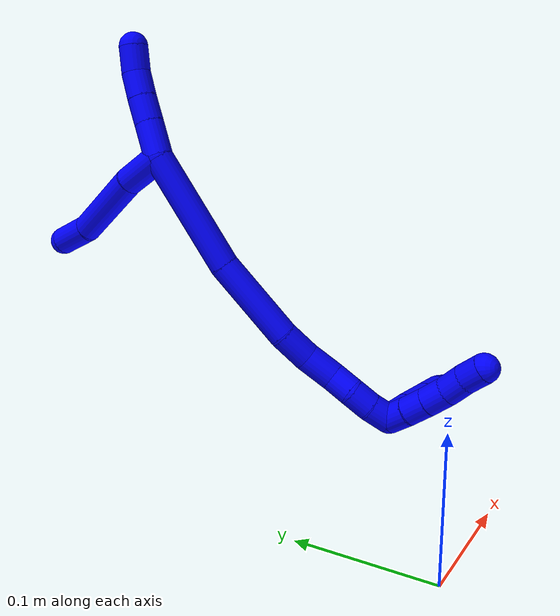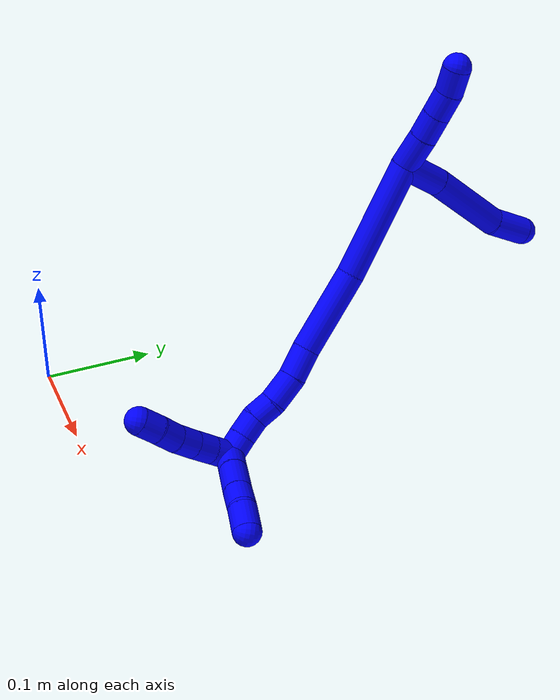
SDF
<sdf version="1.7">
 <world name="default">
  <model name="1">
   <static>0</static>
   <link name="1">
    <collision name="collision-cylinder-e_1_2_8">
     <pose>-0.007686 -0.001689 0.018577 0.090664 -0.390823 -0.017958</pose>
     <geometry><cylinder><radius>0.0125</radius><length>0.040349</length></cylinder></geometry>
     <surface>
      <friction><ode><mu>1.16</mu><mu2>1.16</mu2><slip1>0</slip1><slip2>0</slip2></ode></friction>
      <contact><ode><kp>1e+06</kp><kd>1</kd><max_vel>0</max_vel><min_depth>0.001</min_depth></ode></contact>
     </surface>
    </collision>
    <visual name="visual-cylinder-e_1_2_8">
     <pose>-0.007686 -0.001689 0.018577 0.090664 -0.390823 -0.017958</pose>
     <geometry><cylinder><radius>0.0125</radius><length>0.040349</length></cylinder></geometry>
     <material><ambient>0 0 1 1</ambient></material>
    </visual>
    <collision name="collision-cylinder-e_2_8_9">
     <pose>-0.031638 -0.002011 0.070503 -0.040973 -0.453503 0.009455</pose>
     <geometry><cylinder><radius>0.0125</radius><length>0.07426</length></cylinder></geometry>
     <surface>
      <friction><ode><mu>1.16</mu><mu2>1.16</mu2><slip1>0</slip1><slip2>0</slip2></ode></friction>
      <contact><ode><kp>1e+06</kp><kd>1</kd><max_vel>0</max_vel><min_depth>0.001</min_depth></ode></contact>
     </surface>
    </collision>
    <visual name="visual-cylinder-e_2_8_9">
     <pose>-0.031638 -0.002011 0.070503 -0.040973 -0.453503 0.009455</pose>
     <geometry><cylinder><radius>0.0125</radius><length>0.07426</length></cylinder></geometry>
     <material><ambient>0 0 1 1</ambient></material>
    </visual>
    <collision name="collision-cylinder-e_3_9_6">
     <pose>-0.052332 -0.002877 0.120838 0.130732 -0.2528 -0.016636</pose>
     <geometry><cylinder><radius>0.0125</radius><length>0.03539</length></cylinder></geometry>
     <surface>
      <friction><ode><mu>1.16</mu><mu2>1.16</mu2><slip1>0</slip1><slip2>0</slip2></ode></friction>
      <contact><ode><kp>1e+06</kp><kd>1</kd><max_vel>0</max_vel><min_depth>0.001</min_depth></ode></contact>
     </surface>
    </collision>
    <visual name="visual-cylinder-e_3_9_6">
     <pose>-0.052332 -0.002877 0.120838 0.130732 -0.2528 -0.016636</pose>
     <geometry><cylinder><radius>0.0125</radius><length>0.03539</length></cylinder></geometry>
     <material><ambient>0 0 1 1</ambient></material>
    </visual>
    <collision name="collision-cylinder-e_1_2_10">
     <pose>0.014425 -0.004926 0.003274 0.984275 1.18169 0.690453</pose>
     <geometry><cylinder><radius>0.0125</radius><length>0.031181</length></cylinder></geometry>
     <surface>
      <friction><ode><mu>1.16</mu><mu2>1.16</mu2><slip1>0</slip1><slip2>0</slip2></ode></friction>
      <contact><ode><kp>1e+06</kp><kd>1</kd><max_vel>0</max_vel><min_depth>0.001</min_depth></ode></contact>
     </surface>
    </collision>
    <visual name="visual-cylinder-e_1_2_10">
     <pose>0.014425 -0.004926 0.003274 0.984275 1.18169 0.690453</pose>
     <geometry><cylinder><radius>0.0125</radius><length>0.031181</length></cylinder></geometry>
     <material><ambient>0 0 1 1</ambient></material>
    </visual>
    <collision name="collision-cylinder-e_2_10_11">
     <pose>0.03946 -0.013963 0.008474 1.13236 1.16648 0.794184</pose>
     <geometry><cylinder><radius>0.0125</radius><length>0.023081</length></cylinder></geometry>
     <surface>
      <friction><ode><mu>1.16</mu><mu2>1.16</mu2><slip1>0</slip1><slip2>0</slip2></ode></friction>
      <contact><ode><kp>1e+06</kp><kd>1</kd><max_vel>0</max_vel><min_depth>0.001</min_depth></ode></contact>
     </surface>
    </collision>
    <visual name="visual-cylinder-e_2_10_11">
     <pose>0.03946 -0.013963 0.008474 1.13236 1.16648 0.794184</pose>
     <geometry><cylinder><radius>0.0125</radius><length>0.023081</length></cylinder></geometry>
     <material><ambient>0 0 1 1</ambient></material>
    </visual>
    <collision name="collision-cylinder-e_3_11_12">
     <pose>0.060684 -0.021762 0.012093 1.1409 1.20559 0.831665</pose>
     <geometry><cylinder><radius>0.0125</radius><length>0.022727</length></cylinder></geometry>
     <surface>
      <friction><ode><mu>1.16</mu><mu2>1.16</mu2><slip1>0</slip1><slip2>0</slip2></ode></friction>
      <contact><ode><kp>1e+06</kp><kd>1</kd><max_vel>0</max_vel><min_depth>0.001</min_depth></ode></contact>
     </surface>
    </collision>
    <visual name="visual-cylinder-e_3_11_12">
     <pose>0.060684 -0.021762 0.012093 1.1409 1.20559 0.831665</pose>
     <geometry><cylinder><radius>0.0125</radius><length>0.022727</length></cylinder></geometry>
     <material><ambient>0 0 1 1</ambient></material>
    </visual>
    <collision name="collision-cylinder-e_4_12_5">
     <pose>0.082166 -0.029162 0.013081 1.75805 1.23636 1.41889</pose>
     <geometry><cylinder><radius>0.0125</radius><length>0.023011</length></cylinder></geometry>
     <surface>
      <friction><ode><mu>1.16</mu><mu2>1.16</mu2><slip1>0</slip1><slip2>0</slip2></ode></friction>
      <contact><ode><kp>1e+06</kp><kd>1</kd><max_vel>0</max_vel><min_depth>0.001</min_depth></ode></contact>
     </surface>
    </collision>
    <visual name="visual-cylinder-e_4_12_5">
     <pose>0.082166 -0.029162 0.013081 1.75805 1.23636 1.41889</pose>
     <geometry><cylinder><radius>0.0125</radius><length>0.023011</length></cylinder></geometry>
     <material><ambient>0 0 1 1</ambient></material>
    </visual>
    <collision name="collision-cylinder-e_1_2_13">
     <pose>-0.04051 0.032635 -0.011371 -1.90606 -0.864504 1.15176</pose>
     <geometry><cylinder><radius>0.0125</radius><length>0.106497</length></cylinder></geometry>
     <surface>
      <friction><ode><mu>1.16</mu><mu2>1.16</mu2><slip1>0</slip1><slip2>0</slip2></ode></friction>
      <contact><ode><kp>1e+06</kp><kd>1</kd><max_vel>0</max_vel><min_depth>0.001</min_depth></ode></contact>
     </surface>
    </collision>
    <visual name="visual-cylinder-e_1_2_13">
     <pose>-0.04051 0.032635 -0.011371 -1.90606 -0.864504 1.15176</pose>
     <geometry><cylinder><radius>0.0125</radius><length>0.106497</length></cylinder></geometry>
     <material><ambient>0 0 1 1</ambient></material>
    </visual>
    <collision name="collision-cylinder-e_2_13_14">
     <pose>-0.106628 0.091345 -0.035203 -2.01663 -0.725075 1.0833</pose>
     <geometry><cylinder><radius>0.0125</radius><length>0.077224</length></cylinder></geometry>
     <surface>
      <friction><ode><mu>1.16</mu><mu2>1.16</mu2><slip1>0</slip1><slip2>0</slip2></ode></friction>
      <contact><ode><kp>1e+06</kp><kd>1</kd><max_vel>0</max_vel><min_depth>0.001</min_depth></ode></contact>
     </surface>
    </collision>
    <visual name="visual-cylinder-e_2_13_14">
     <pose>-0.106628 0.091345 -0.035203 -2.01663 -0.725075 1.0833</pose>
     <geometry><cylinder><radius>0.0125</radius><length>0.077224</length></cylinder></geometry>
     <material><ambient>0 0 1 1</ambient></material>
    </visual>
    <collision name="collision-cylinder-e_3_14_15">
     <pose>-0.139929 0.128512 -0.051691 -1.919 -0.577773 0.802143</pose>
     <geometry><cylinder><radius>0.0125</radius><length>0.028176</length></cylinder></geometry>
     <surface>
      <friction><ode><mu>1.16</mu><mu2>1.16</mu2><slip1>0</slip1><slip2>0</slip2></ode></friction>
      <contact><ode><kp>1e+06</kp><kd>1</kd><max_vel>0</max_vel><min_depth>0.001</min_depth></ode></contact>
     </surface>
    </collision>
    <visual name="visual-cylinder-e_3_14_15">
     <pose>-0.139929 0.128512 -0.051691 -1.919 -0.577773 0.802143</pose>
     <geometry><cylinder><radius>0.0125</radius><length>0.028176</length></cylinder></geometry>
     <material><ambient>0 0 1 1</ambient></material>
    </visual>
    <collision name="collision-cylinder-e_4_15_16">
     <pose>-0.154644 0.14971 -0.062241 -2.14402 -0.528348 0.921804</pose>
     <geometry><cylinder><radius>0.0125</radius><length>0.027853</length></cylinder></geometry>
     <surface>
      <friction><ode><mu>1.16</mu><mu2>1.16</mu2><slip1>0</slip1><slip2>0</slip2></ode></friction>
      <contact><ode><kp>1e+06</kp><kd>1</kd><max_vel>0</max_vel><min_depth>0.001</min_depth></ode></contact>
     </surface>
    </collision>
    <visual name="visual-cylinder-e_4_15_16">
     <pose>-0.154644 0.14971 -0.062241 -2.14402 -0.528348 0.921804</pose>
     <geometry><cylinder><radius>0.0125</radius><length>0.027853</length></cylinder></geometry>
     <material><ambient>0 0 1 1</ambient></material>
    </visual>
    <collision name="collision-cylinder-e_5_16_17">
     <pose>-0.167298 0.165306 -0.075022 -2.42137 -0.594911 1.36661</pose>
     <geometry><cylinder><radius>0.0125</radius><length>0.020104</length></cylinder></geometry>
     <surface>
      <friction><ode><mu>1.16</mu><mu2>1.16</mu2><slip1>0</slip1><slip2>0</slip2></ode></friction>
      <contact><ode><kp>1e+06</kp><kd>1</kd><max_vel>0</max_vel><min_depth>0.001</min_depth></ode></contact>
     </surface>
    </collision>
    <visual name="visual-cylinder-e_5_16_17">
     <pose>-0.167298 0.165306 -0.075022 -2.42137 -0.594911 1.36661</pose>
     <geometry><cylinder><radius>0.0125</radius><length>0.020104</length></cylinder></geometry>
     <material><ambient>0 0 1 1</ambient></material>
    </visual>
    <collision name="collision-cylinder-e_6_17_18">
     <pose>-0.17822 0.178196 -0.085561 -2.09543 -0.554056 0.916186</pose>
     <geometry><cylinder><radius>0.0125</radius><length>0.020106</length></cylinder></geometry>
     <surface>
      <friction><ode><mu>1.16</mu><mu2>1.16</mu2><slip1>0</slip1><slip2>0</slip2></ode></friction>
      <contact><ode><kp>1e+06</kp><kd>1</kd><max_vel>0</max_vel><min_depth>0.001</min_depth></ode></contact>
     </surface>
    </collision>
    <visual name="visual-cylinder-e_6_17_18">
     <pose>-0.17822 0.178196 -0.085561 -2.09543 -0.554056 0.916186</pose>
     <geometry><cylinder><radius>0.0125</radius><length>0.020106</length></cylinder></geometry>
     <material><ambient>0 0 1 1</ambient></material>
    </visual>
    <collision name="collision-cylinder-e_7_18_1">
     <pose>-0.187645 0.193728 -0.093985 -2.04177 -0.425395 0.677475</pose>
     <geometry><cylinder><radius>0.0125</radius><length>0.02004</length></cylinder></geometry>
     <surface>
      <friction><ode><mu>1.16</mu><mu2>1.16</mu2><slip1>0</slip1><slip2>0</slip2></ode></friction>
      <contact><ode><kp>1e+06</kp><kd>1</kd><max_vel>0</max_vel><min_depth>0.001</min_depth></ode></contact>
     </surface>
    </collision>
    <visual name="visual-cylinder-e_7_18_1">
     <pose>-0.187645 0.193728 -0.093985 -2.04177 -0.425395 0.677475</pose>
     <geometry><cylinder><radius>0.0125</radius><length>0.02004</length></cylinder></geometry>
     <material><ambient>0 0 1 1</ambient></material>
    </visual>
    <collision name="collision-cylinder-e_1_1_19">
     <pose>-0.188187 0.202637 -0.107426 -3.05843 0.367494 -2.70112</pose>
     <geometry><cylinder><radius>0.0125</radius><length>0.02</length></cylinder></geometry>
     <surface>
      <friction><ode><mu>1.16</mu><mu2>1.16</mu2><slip1>0</slip1><slip2>0</slip2></ode></friction>
      <contact><ode><kp>1e+06</kp><kd>1</kd><max_vel>0</max_vel><min_depth>0.001</min_depth></ode></contact>
     </surface>
    </collision>
    <visual name="visual-cylinder-e_1_1_19">
     <pose>-0.188187 0.202637 -0.107426 -3.05843 0.367494 -2.70112</pose>
     <geometry><cylinder><radius>0.0125</radius><length>0.02</length></cylinder></geometry>
     <material><ambient>0 0 1 1</ambient></material>
    </visual>
    <collision name="collision-cylinder-e_2_19_20">
     <pose>-0.180346 0.204658 -0.125693 -3.00352 0.438803 -2.54021</pose>
     <geometry><cylinder><radius>0.0125</radius><length>0.02</length></cylinder></geometry>
     <surface>
      <friction><ode><mu>1.16</mu><mu2>1.16</mu2><slip1>0</slip1><slip2>0</slip2></ode></friction>
      <contact><ode><kp>1e+06</kp><kd>1</kd><max_vel>0</max_vel><min_depth>0.001</min_depth></ode></contact>
     </surface>
    </collision>
    <visual name="visual-cylinder-e_2_19_20">
     <pose>-0.180346 0.204658 -0.125693 -3.00352 0.438803 -2.54021</pose>
     <geometry><cylinder><radius>0.0125</radius><length>0.02</length></cylinder></geometry>
     <material><ambient>0 0 1 1</ambient></material>
    </visual>
    <collision name="collision-cylinder-e_3_20_21">
     <pose>-0.171495 0.207149 -0.14345 -3.00088 0.478201 -2.57872</pose>
     <geometry><cylinder><radius>0.0125</radius><length>0.02</length></cylinder></geometry>
     <surface>
      <friction><ode><mu>1.16</mu><mu2>1.16</mu2><slip1>0</slip1><slip2>0</slip2></ode></friction>
      <contact><ode><kp>1e+06</kp><kd>1</kd><max_vel>0</max_vel><min_depth>0.001</min_depth></ode></contact>
     </surface>
    </collision>
    <visual name="visual-cylinder-e_3_20_21">
     <pose>-0.171495 0.207149 -0.14345 -3.00088 0.478201 -2.57872</pose>
     <geometry><cylinder><radius>0.0125</radius><length>0.02</length></cylinder></geometry>
     <material><ambient>0 0 1 1</ambient></material>
    </visual>
    <collision name="collision-cylinder-e_4_21_22">
     <pose>-0.161823 0.208603 -0.160857 -3.11741 0.531699 -3.05282</pose>
     <geometry><cylinder><radius>0.0125</radius><length>0.02</length></cylinder></geometry>
     <surface>
      <friction><ode><mu>1.16</mu><mu2>1.16</mu2><slip1>0</slip1><slip2>0</slip2></ode></friction>
      <contact><ode><kp>1e+06</kp><kd>1</kd><max_vel>0</max_vel><min_depth>0.001</min_depth></ode></contact>
     </surface>
    </collision>
    <visual name="visual-cylinder-e_4_21_22">
     <pose>-0.161823 0.208603 -0.160857 -3.11741 0.531699 -3.05282</pose>
     <geometry><cylinder><radius>0.0125</radius><length>0.02</length></cylinder></geometry>
     <material><ambient>0 0 1 1</ambient></material>
    </visual>
    <collision name="collision-cylinder-e_5_22_4">
     <pose>-0.152695 0.208607 -0.178611 3.11924 0.417861 3.03627</pose>
     <geometry><cylinder><radius>0.0125</radius><length>0.02</length></cylinder></geometry>
     <surface>
      <friction><ode><mu>1.16</mu><mu2>1.16</mu2><slip1>0</slip1><slip2>0</slip2></ode></friction>
      <contact><ode><kp>1e+06</kp><kd>1</kd><max_vel>0</max_vel><min_depth>0.001</min_depth></ode></contact>
     </surface>
    </collision>
    <visual name="visual-cylinder-e_5_22_4">
     <pose>-0.152695 0.208607 -0.178611 3.11924 0.417861 3.03627</pose>
     <geometry><cylinder><radius>0.0125</radius><length>0.02</length></cylinder></geometry>
     <material><ambient>0 0 1 1</ambient></material>
    </visual>
    <collision name="collision-cylinder-e_1_1_23">
     <pose>-0.185628 0.21282 -0.097832 -1.54393 0.511348 -0.498352</pose>
     <geometry><cylinder><radius>0.0125</radius><length>0.025142</length></cylinder></geometry>
     <surface>
      <friction><ode><mu>1.16</mu><mu2>1.16</mu2><slip1>0</slip1><slip2>0</slip2></ode></friction>
      <contact><ode><kp>1e+06</kp><kd>1</kd><max_vel>0</max_vel><min_depth>0.001</min_depth></ode></contact>
     </surface>
    </collision>
    <visual name="visual-cylinder-e_1_1_23">
     <pose>-0.185628 0.21282 -0.097832 -1.54393 0.511348 -0.498352</pose>
     <geometry><cylinder><radius>0.0125</radius><length>0.025142</length></cylinder></geometry>
     <material><ambient>0 0 1 1</ambient></material>
    </visual>
    <collision name="collision-cylinder-e_2_23_24">
     <pose>-0.172826 0.237163 -0.096824 -1.5176 0.460626 -0.437523</pose>
     <geometry><cylinder><radius>0.0125</radius><length>0.029924</length></cylinder></geometry>
     <surface>
      <friction><ode><mu>1.16</mu><mu2>1.16</mu2><slip1>0</slip1><slip2>0</slip2></ode></friction>
      <contact><ode><kp>1e+06</kp><kd>1</kd><max_vel>0</max_vel><min_depth>0.001</min_depth></ode></contact>
     </surface>
    </collision>
    <visual name="visual-cylinder-e_2_23_24">
     <pose>-0.172826 0.237163 -0.096824 -1.5176 0.460626 -0.437523</pose>
     <geometry><cylinder><radius>0.0125</radius><length>0.029924</length></cylinder></geometry>
     <material><ambient>0 0 1 1</ambient></material>
    </visual>
    <collision name="collision-cylinder-e_3_24_25">
     <pose>-0.161601 0.260152 -0.095164 -1.47242 0.442562 -0.402198</pose>
     <geometry><cylinder><radius>0.0125</radius><length>0.021363</length></cylinder></geometry>
     <surface>
      <friction><ode><mu>1.16</mu><mu2>1.16</mu2><slip1>0</slip1><slip2>0</slip2></ode></friction>
      <contact><ode><kp>1e+06</kp><kd>1</kd><max_vel>0</max_vel><min_depth>0.001</min_depth></ode></contact>
     </surface>
    </collision>
    <visual name="visual-cylinder-e_3_24_25">
     <pose>-0.161601 0.260152 -0.095164 -1.47242 0.442562 -0.402198</pose>
     <geometry><cylinder><radius>0.0125</radius><length>0.021363</length></cylinder></geometry>
     <material><ambient>0 0 1 1</ambient></material>
    </visual>
    <collision name="collision-cylinder-e_4_25_3">
     <pose>-0.154773 0.281191 -0.092449 -1.41747 0.192361 -0.165053</pose>
     <geometry><cylinder><radius>0.0125</radius><length>0.023571</length></cylinder></geometry>
     <surface>
      <friction><ode><mu>1.16</mu><mu2>1.16</mu2><slip1>0</slip1><slip2>0</slip2></ode></friction>
      <contact><ode><kp>1e+06</kp><kd>1</kd><max_vel>0</max_vel><min_depth>0.001</min_depth></ode></contact>
     </surface>
    </collision>
    <visual name="visual-cylinder-e_4_25_3">
     <pose>-0.154773 0.281191 -0.092449 -1.41747 0.192361 -0.165053</pose>
     <geometry><cylinder><radius>0.0125</radius><length>0.023571</length></cylinder></geometry>
     <material><ambient>0 0 1 1</ambient></material>
    </visual>
    <collision name="collision-sphere-3">
     <pose>-0.15252 0.292623 -0.090682 0 -0 0</pose>
     <geometry><sphere><radius>0.0125</radius></sphere></geometry>
     <surface>
      <friction><ode><mu>1.16</mu><mu2>1.16</mu2><slip1>0</slip1><slip2>0</slip2></ode></friction>
      <contact><ode><kp>1e+06</kp><kd>1</kd><max_vel>0</max_vel><min_depth>0.001</min_depth></ode></contact>
     </surface>
    </collision>
    <visual name="visual-sphere-3">
     <pose>-0.15252 0.292623 -0.090682 0 -0 0</pose>
     <geometry><sphere><radius>0.0125</radius></sphere></geometry>
     <material><ambient>0 0 1 1</ambient></material>
    </visual>
    <collision name="collision-sphere-25">
     <pose>-0.157026 0.269758 -0.094216 0 -0 0</pose>
     <geometry><sphere><radius>0.0125</radius></sphere></geometry>
     <surface>
      <friction><ode><mu>1.16</mu><mu2>1.16</mu2><slip1>0</slip1><slip2>0</slip2></ode></friction>
      <contact><ode><kp>1e+06</kp><kd>1</kd><max_vel>0</max_vel><min_depth>0.001</min_depth></ode></contact>
     </surface>
    </collision>
    <visual name="visual-sphere-25">
     <pose>-0.157026 0.269758 -0.094216 0 -0 0</pose>
     <geometry><sphere><radius>0.0125</radius></sphere></geometry>
     <material><ambient>0 0 1 1</ambient></material>
    </visual>
    <collision name="collision-sphere-24">
     <pose>-0.166175 0.250547 -0.096112 0 -0 0</pose>
     <geometry><sphere><radius>0.0125</radius></sphere></geometry>
     <surface>
      <friction><ode><mu>1.16</mu><mu2>1.16</mu2><slip1>0</slip1><slip2>0</slip2></ode></friction>
      <contact><ode><kp>1e+06</kp><kd>1</kd><max_vel>0</max_vel><min_depth>0.001</min_depth></ode></contact>
     </surface>
    </collision>
    <visual name="visual-sphere-24">
     <pose>-0.166175 0.250547 -0.096112 0 -0 0</pose>
     <geometry><sphere><radius>0.0125</radius></sphere></geometry>
     <material><ambient>0 0 1 1</ambient></material>
    </visual>
    <collision name="collision-sphere-23">
     <pose>-0.179477 0.223779 -0.097537 0 -0 0</pose>
     <geometry><sphere><radius>0.0125</radius></sphere></geometry>
     <surface>
      <friction><ode><mu>1.16</mu><mu2>1.16</mu2><slip1>0</slip1><slip2>0</slip2></ode></friction>
      <contact><ode><kp>1e+06</kp><kd>1</kd><max_vel>0</max_vel><min_depth>0.001</min_depth></ode></contact>
     </surface>
    </collision>
    <visual name="visual-sphere-23">
     <pose>-0.179477 0.223779 -0.097537 0 -0 0</pose>
     <geometry><sphere><radius>0.0125</radius></sphere></geometry>
     <material><ambient>0 0 1 1</ambient></material>
    </visual>
    <collision name="collision-sphere-4">
     <pose>-0.148637 0.208403 -0.187749 0 -0 0</pose>
     <geometry><sphere><radius>0.0125</radius></sphere></geometry>
     <surface>
      <friction><ode><mu>1.16</mu><mu2>1.16</mu2><slip1>0</slip1><slip2>0</slip2></ode></friction>
      <contact><ode><kp>1e+06</kp><kd>1</kd><max_vel>0</max_vel><min_depth>0.001</min_depth></ode></contact>
     </surface>
    </collision>
    <visual name="visual-sphere-4">
     <pose>-0.148637 0.208403 -0.187749 0 -0 0</pose>
     <geometry><sphere><radius>0.0125</radius></sphere></geometry>
     <material><ambient>0 0 1 1</ambient></material>
    </visual>
    <collision name="collision-sphere-22">
     <pose>-0.156753 0.208811 -0.169474 0 -0 0</pose>
     <geometry><sphere><radius>0.0125</radius></sphere></geometry>
     <surface>
      <friction><ode><mu>1.16</mu><mu2>1.16</mu2><slip1>0</slip1><slip2>0</slip2></ode></friction>
      <contact><ode><kp>1e+06</kp><kd>1</kd><max_vel>0</max_vel><min_depth>0.001</min_depth></ode></contact>
     </surface>
    </collision>
    <visual name="visual-sphere-22">
     <pose>-0.156753 0.208811 -0.169474 0 -0 0</pose>
     <geometry><sphere><radius>0.0125</radius></sphere></geometry>
     <material><ambient>0 0 1 1</ambient></material>
    </visual>
    <collision name="collision-sphere-21">
     <pose>-0.166893 0.208394 -0.15224 0 -0 0</pose>
     <geometry><sphere><radius>0.0125</radius></sphere></geometry>
     <surface>
      <friction><ode><mu>1.16</mu><mu2>1.16</mu2><slip1>0</slip1><slip2>0</slip2></ode></friction>
      <contact><ode><kp>1e+06</kp><kd>1</kd><max_vel>0</max_vel><min_depth>0.001</min_depth></ode></contact>
     </surface>
    </collision>
    <visual name="visual-sphere-21">
     <pose>-0.166893 0.208394 -0.15224 0 -0 0</pose>
     <geometry><sphere><radius>0.0125</radius></sphere></geometry>
     <material><ambient>0 0 1 1</ambient></material>
    </visual>
    <collision name="collision-sphere-20">
     <pose>-0.176097 0.205904 -0.134659 0 -0 0</pose>
     <geometry><sphere><radius>0.0125</radius></sphere></geometry>
     <surface>
      <friction><ode><mu>1.16</mu><mu2>1.16</mu2><slip1>0</slip1><slip2>0</slip2></ode></friction>
      <contact><ode><kp>1e+06</kp><kd>1</kd><max_vel>0</max_vel><min_depth>0.001</min_depth></ode></contact>
     </surface>
    </collision>
    <visual name="visual-sphere-20">
     <pose>-0.176097 0.205904 -0.134659 0 -0 0</pose>
     <geometry><sphere><radius>0.0125</radius></sphere></geometry>
     <material><ambient>0 0 1 1</ambient></material>
    </visual>
    <collision name="collision-sphere-11">
     <pose>0.05007 -0.018073 0.010402 0 -0 0</pose>
     <geometry><sphere><radius>0.0125</radius></sphere></geometry>
     <surface>
      <friction><ode><mu>1.16</mu><mu2>1.16</mu2><slip1>0</slip1><slip2>0</slip2></ode></friction>
      <contact><ode><kp>1e+06</kp><kd>1</kd><max_vel>0</max_vel><min_depth>0.001</min_depth></ode></contact>
     </surface>
    </collision>
    <visual name="visual-sphere-11">
     <pose>0.05007 -0.018073 0.010402 0 -0 0</pose>
     <geometry><sphere><radius>0.0125</radius></sphere></geometry>
     <material><ambient>0 0 1 1</ambient></material>
    </visual>
    <collision name="collision-sphere-10">
     <pose>0.02885 -0.009852 0.006547 0 -0 0</pose>
     <geometry><sphere><radius>0.0125</radius></sphere></geometry>
     <surface>
      <friction><ode><mu>1.16</mu><mu2>1.16</mu2><slip1>0</slip1><slip2>0</slip2></ode></friction>
      <contact><ode><kp>1e+06</kp><kd>1</kd><max_vel>0</max_vel><min_depth>0.001</min_depth></ode></contact>
     </surface>
    </collision>
    <visual name="visual-sphere-10">
     <pose>0.02885 -0.009852 0.006547 0 -0 0</pose>
     <geometry><sphere><radius>0.0125</radius></sphere></geometry>
     <material><ambient>0 0 1 1</ambient></material>
    </visual>
    <collision name="collision-sphere-6">
     <pose>-0.056757 -0.00511 0.137825 0 -0 0</pose>
     <geometry><sphere><radius>0.0125</radius></sphere></geometry>
     <surface>
      <friction><ode><mu>1.16</mu><mu2>1.16</mu2><slip1>0</slip1><slip2>0</slip2></ode></friction>
      <contact><ode><kp>1e+06</kp><kd>1</kd><max_vel>0</max_vel><min_depth>0.001</min_depth></ode></contact>
     </surface>
    </collision>
    <visual name="visual-sphere-6">
     <pose>-0.056757 -0.00511 0.137825 0 -0 0</pose>
     <geometry><sphere><radius>0.0125</radius></sphere></geometry>
     <material><ambient>0 0 1 1</ambient></material>
    </visual>
    <collision name="collision-sphere-9">
     <pose>-0.047906 -0.000643 0.103852 0 -0 0</pose>
     <geometry><sphere><radius>0.0125</radius></sphere></geometry>
     <surface>
      <friction><ode><mu>1.16</mu><mu2>1.16</mu2><slip1>0</slip1><slip2>0</slip2></ode></friction>
      <contact><ode><kp>1e+06</kp><kd>1</kd><max_vel>0</max_vel><min_depth>0.001</min_depth></ode></contact>
     </surface>
    </collision>
    <visual name="visual-sphere-9">
     <pose>-0.047906 -0.000643 0.103852 0 -0 0</pose>
     <geometry><sphere><radius>0.0125</radius></sphere></geometry>
     <material><ambient>0 0 1 1</ambient></material>
    </visual>
    <collision name="collision-sphere-2">
     <geometry><sphere><radius>0.0125</radius></sphere></geometry>
     <surface>
      <friction><ode><mu>1.16</mu><mu2>1.16</mu2><slip1>0</slip1><slip2>0</slip2></ode></friction>
      <contact><ode><kp>1e+06</kp><kd>1</kd><max_vel>0</max_vel><min_depth>0.001</min_depth></ode></contact>
     </surface>
    </collision>
    <visual name="visual-sphere-2">
     <geometry><sphere><radius>0.0125</radius></sphere></geometry>
     <material><ambient>0 0 1 1</ambient></material>
    </visual>
    <collision name="collision-sphere-19">
     <pose>-0.184594 0.203412 -0.116726 0 -0 0</pose>
     <geometry><sphere><radius>0.0125</radius></sphere></geometry>
     <surface>
      <friction><ode><mu>1.16</mu><mu2>1.16</mu2><slip1>0</slip1><slip2>0</slip2></ode></friction>
      <contact><ode><kp>1e+06</kp><kd>1</kd><max_vel>0</max_vel><min_depth>0.001</min_depth></ode></contact>
     </surface>
    </collision>
    <visual name="visual-sphere-19">
     <pose>-0.184594 0.203412 -0.116726 0 -0 0</pose>
     <geometry><sphere><radius>0.0125</radius></sphere></geometry>
     <material><ambient>0 0 1 1</ambient></material>
    </visual>
    <collision name="collision-sphere-8">
     <pose>-0.015371 -0.003378 0.037154 0 -0 0</pose>
     <geometry><sphere><radius>0.0125</radius></sphere></geometry>
     <surface>
      <friction><ode><mu>1.16</mu><mu2>1.16</mu2><slip1>0</slip1><slip2>0</slip2></ode></friction>
      <contact><ode><kp>1e+06</kp><kd>1</kd><max_vel>0</max_vel><min_depth>0.001</min_depth></ode></contact>
     </surface>
    </collision>
    <visual name="visual-sphere-8">
     <pose>-0.015371 -0.003378 0.037154 0 -0 0</pose>
     <geometry><sphere><radius>0.0125</radius></sphere></geometry>
     <material><ambient>0 0 1 1</ambient></material>
    </visual>
    <collision name="collision-sphere-12">
     <pose>0.071298 -0.025451 0.013784 0 -0 0</pose>
     <geometry><sphere><radius>0.0125</radius></sphere></geometry>
     <surface>
      <friction><ode><mu>1.16</mu><mu2>1.16</mu2><slip1>0</slip1><slip2>0</slip2></ode></friction>
      <contact><ode><kp>1e+06</kp><kd>1</kd><max_vel>0</max_vel><min_depth>0.001</min_depth></ode></contact>
     </surface>
    </collision>
    <visual name="visual-sphere-12">
     <pose>0.071298 -0.025451 0.013784 0 -0 0</pose>
     <geometry><sphere><radius>0.0125</radius></sphere></geometry>
     <material><ambient>0 0 1 1</ambient></material>
    </visual>
    <collision name="collision-sphere-5">
     <pose>0.093034 -0.032872 0.012378 0 -0 0</pose>
     <geometry><sphere><radius>0.0125</radius></sphere></geometry>
     <surface>
      <friction><ode><mu>1.16</mu><mu2>1.16</mu2><slip1>0</slip1><slip2>0</slip2></ode></friction>
      <contact><ode><kp>1e+06</kp><kd>1</kd><max_vel>0</max_vel><min_depth>0.001</min_depth></ode></contact>
     </surface>
    </collision>
    <visual name="visual-sphere-5">
     <pose>0.093034 -0.032872 0.012378 0 -0 0</pose>
     <geometry><sphere><radius>0.0125</radius></sphere></geometry>
     <material><ambient>0 0 1 1</ambient></material>
    </visual>
    <collision name="collision-sphere-13">
     <pose>-0.08102 0.06527 -0.022741 0 -0 0</pose>
     <geometry><sphere><radius>0.0125</radius></sphere></geometry>
     <surface>
      <friction><ode><mu>1.16</mu><mu2>1.16</mu2><slip1>0</slip1><slip2>0</slip2></ode></friction>
      <contact><ode><kp>1e+06</kp><kd>1</kd><max_vel>0</max_vel><min_depth>0.001</min_depth></ode></contact>
     </surface>
    </collision>
    <visual name="visual-sphere-13">
     <pose>-0.08102 0.06527 -0.022741 0 -0 0</pose>
     <geometry><sphere><radius>0.0125</radius></sphere></geometry>
     <material><ambient>0 0 1 1</ambient></material>
    </visual>
    <collision name="collision-sphere-14">
     <pose>-0.132235 0.117419 -0.047665 0 -0 0</pose>
     <geometry><sphere><radius>0.0125</radius></sphere></geometry>
     <surface>
      <friction><ode><mu>1.16</mu><mu2>1.16</mu2><slip1>0</slip1><slip2>0</slip2></ode></friction>
      <contact><ode><kp>1e+06</kp><kd>1</kd><max_vel>0</max_vel><min_depth>0.001</min_depth></ode></contact>
     </surface>
    </collision>
    <visual name="visual-sphere-14">
     <pose>-0.132235 0.117419 -0.047665 0 -0 0</pose>
     <geometry><sphere><radius>0.0125</radius></sphere></geometry>
     <material><ambient>0 0 1 1</ambient></material>
    </visual>
    <collision name="collision-sphere-15">
     <pose>-0.147623 0.139605 -0.055718 0 -0 0</pose>
     <geometry><sphere><radius>0.0125</radius></sphere></geometry>
     <surface>
      <friction><ode><mu>1.16</mu><mu2>1.16</mu2><slip1>0</slip1><slip2>0</slip2></ode></friction>
      <contact><ode><kp>1e+06</kp><kd>1</kd><max_vel>0</max_vel><min_depth>0.001</min_depth></ode></contact>
     </surface>
    </collision>
    <visual name="visual-sphere-15">
     <pose>-0.147623 0.139605 -0.055718 0 -0 0</pose>
     <geometry><sphere><radius>0.0125</radius></sphere></geometry>
     <material><ambient>0 0 1 1</ambient></material>
    </visual>
    <collision name="collision-sphere-16">
     <pose>-0.161664 0.159815 -0.068764 0 -0 0</pose>
     <geometry><sphere><radius>0.0125</radius></sphere></geometry>
     <surface>
      <friction><ode><mu>1.16</mu><mu2>1.16</mu2><slip1>0</slip1><slip2>0</slip2></ode></friction>
      <contact><ode><kp>1e+06</kp><kd>1</kd><max_vel>0</max_vel><min_depth>0.001</min_depth></ode></contact>
     </surface>
    </collision>
    <visual name="visual-sphere-16">
     <pose>-0.161664 0.159815 -0.068764 0 -0 0</pose>
     <geometry><sphere><radius>0.0125</radius></sphere></geometry>
     <material><ambient>0 0 1 1</ambient></material>
    </visual>
    <collision name="collision-sphere-17">
     <pose>-0.172931 0.170797 -0.081279 0 -0 0</pose>
     <geometry><sphere><radius>0.0125</radius></sphere></geometry>
     <surface>
      <friction><ode><mu>1.16</mu><mu2>1.16</mu2><slip1>0</slip1><slip2>0</slip2></ode></friction>
      <contact><ode><kp>1e+06</kp><kd>1</kd><max_vel>0</max_vel><min_depth>0.001</min_depth></ode></contact>
     </surface>
    </collision>
    <visual name="visual-sphere-17">
     <pose>-0.172931 0.170797 -0.081279 0 -0 0</pose>
     <geometry><sphere><radius>0.0125</radius></sphere></geometry>
     <material><ambient>0 0 1 1</ambient></material>
    </visual>
    <collision name="collision-sphere-18">
     <pose>-0.18351 0.185595 -0.089843 0 -0 0</pose>
     <geometry><sphere><radius>0.0125</radius></sphere></geometry>
     <surface>
      <friction><ode><mu>1.16</mu><mu2>1.16</mu2><slip1>0</slip1><slip2>0</slip2></ode></friction>
      <contact><ode><kp>1e+06</kp><kd>1</kd><max_vel>0</max_vel><min_depth>0.001</min_depth></ode></contact>
     </surface>
    </collision>
    <visual name="visual-sphere-18">
     <pose>-0.18351 0.185595 -0.089843 0 -0 0</pose>
     <geometry><sphere><radius>0.0125</radius></sphere></geometry>
     <material><ambient>0 0 1 1</ambient></material>
    </visual>
    <collision name="collision-sphere-1">
     <pose>-0.19178 0.201861 -0.098126 0 -0 0</pose>
     <geometry><sphere><radius>0.0125</radius></sphere></geometry>
     <surface>
      <friction><ode><mu>1.16</mu><mu2>1.16</mu2><slip1>0</slip1><slip2>0</slip2></ode></friction>
      <contact><ode><kp>1e+06</kp><kd>1</kd><max_vel>0</max_vel><min_depth>0.001</min_depth></ode></contact>
     </surface>
    </collision>
    <visual name="visual-sphere-1">
     <pose>-0.19178 0.201861 -0.098126 0 -0 0</pose>
     <geometry><sphere><radius>0.0125</radius></sphere></geometry>
     <material><ambient>0 0 1 1</ambient></material>
    </visual>
    <inertial>
     <pose>-0.087222 0.096552 -0.033315 0 -0 0</pose>
     <mass>0.75</mass>
     <inertia><ixx>0.000184</ixx><ixy>0</ixy><ixz>0</ixz><iyy>0.00025</iyy><iyz>0</iyz><izz>9e-06</izz></inertia>
    </inertial>
   </link>
   <pose>0.131859 0.304192 0.22824 -2.22137 -1.09638 0.297261</pose>
  </model>
 </world>
</sdf>
